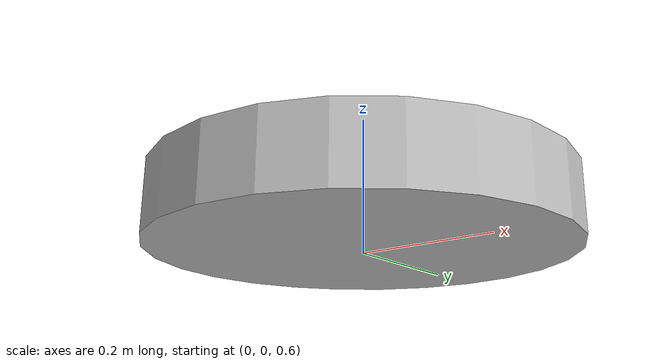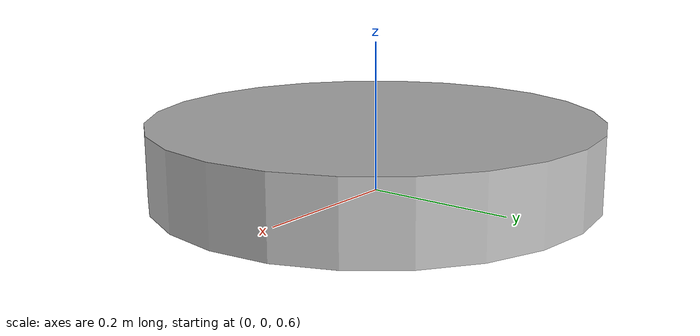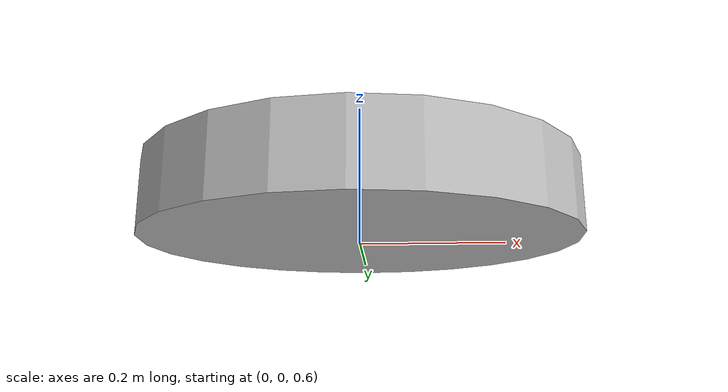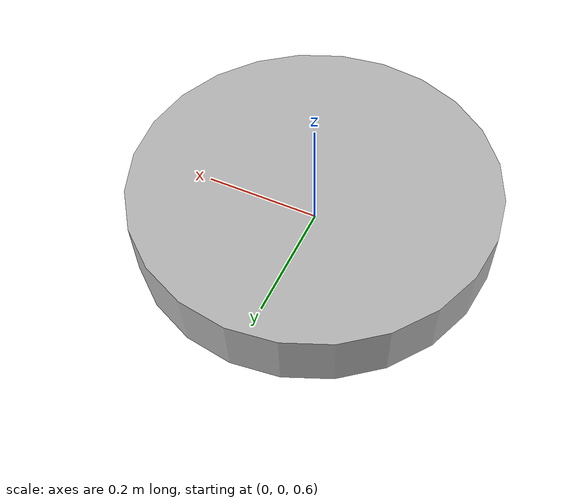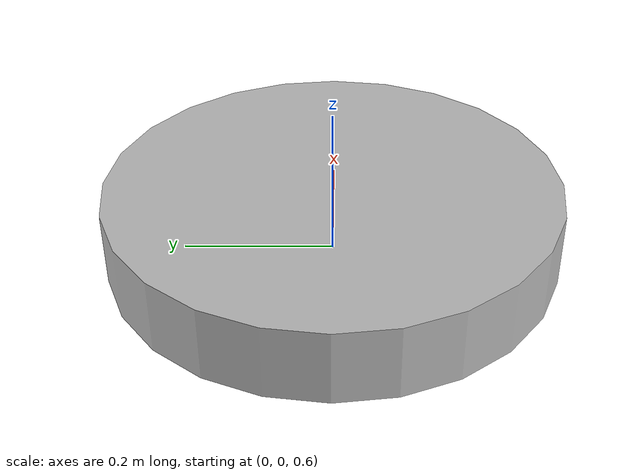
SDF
<?xml version="1.0"?>
<sdf version="1.6">
  <model name="rwc2017/table_balcony">
    <link name="1_link">
      <collision name="1_col">
        <geometry>
          <cylinder>
            <length>0.1</length>
            <radius>0.3</radius>
          </cylinder>
        </geometry>
      </collision>
      <visual name="1_vis">
        <geometry>
          <cylinder>
            <length>0.1</length>
            <radius>0.3</radius>
          </cylinder>
        </geometry>
      </visual>
      <pose>0 0 0.65 0 0 0</pose>
    </link>
    <link name="in_front_of">
      <virtual_volume name="in_front_of_vv">
        <geometry>
          <box>
            <size>0.4 0.6 0.01</size>
          </box>
        </geometry>
        <pose>0.7 0.0 0.005 0 0 0</pose>
      </virtual_volume>
    </link>
    <link name="on_top_of">
      <virtual_volume name="on_top_of_vv">
        <geometry>
          <box>
            <size>0.6 0.6 0.375</size>
          </box>
        </geometry>
        <pose>0.0 0.0 0.9125 0 0 0</pose>
      </virtual_volume>
    </link>
    <static>true</static>
  </model>
</sdf>
